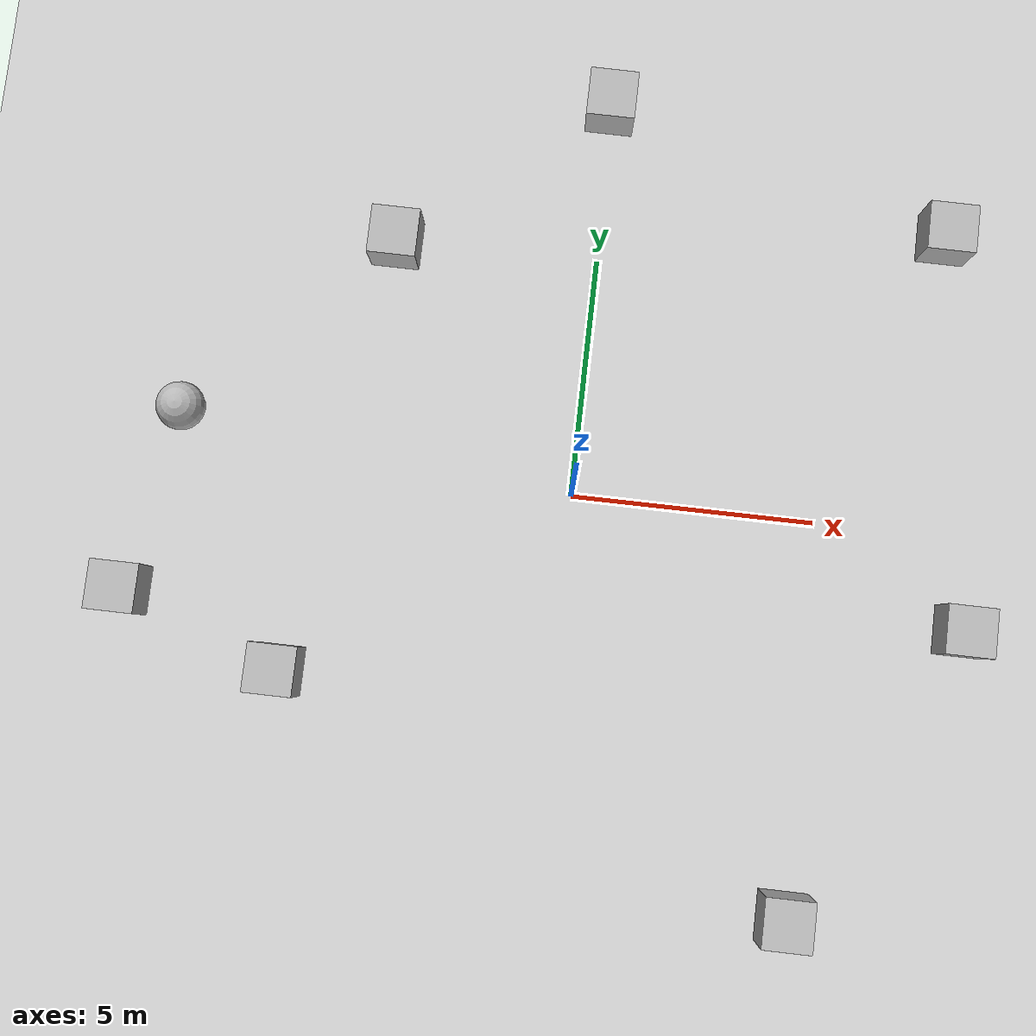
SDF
<sdf version='1.10'>
  <world name='playground'>
    <physics name='1ms' type='ignored'>
      <max_step_size>0.001</max_step_size>
      <real_time_factor>1</real_time_factor>
      <real_time_update_rate>1000</real_time_update_rate>
    </physics>
    <plugin name='gz::sim::systems::Physics' filename='gz-sim-physics-system'/>
    <plugin name='gz::sim::systems::UserCommands' filename='gz-sim-user-commands-system'/>
    <plugin name='gz::sim::systems::SceneBroadcaster' filename='gz-sim-scene-broadcaster-system'/>
    <plugin name='gz::sim::systems::Contact' filename='gz-sim-contact-system'/>
    <gravity>0 0 -9.8000000000000007</gravity>
    <magnetic_field>5.5644999999999998e-06 2.2875799999999999e-05 -4.2388400000000002e-05</magnetic_field>
    <atmosphere type='adiabatic'/>
    <scene>
      <ambient>0.400000006 0.400000006 0.400000006 1</ambient>
      <background>0.699999988 0.699999988 0.699999988 1</background>
      <shadows>true</shadows>
    </scene>
    <model name='ground_plane'>
      <static>true</static>
      <link name='link'>
        <collision name='collision'>
          <geometry>
            <plane>
              <normal>0 0 1</normal>
              <size>100 100</size>
            </plane>
          </geometry>
          <surface>
            <friction>
              <ode/>
            </friction>
            <bounce/>
            <contact/>
          </surface>
        </collision>
        <visual name='visual'>
          <geometry>
            <plane>
              <normal>0 0 1</normal>
              <size>100 100</size>
            </plane>
          </geometry>
          <material>
            <ambient>0.800000012 0.800000012 0.800000012 1</ambient>
            <diffuse>0.800000012 0.800000012 0.800000012 1</diffuse>
            <specular>0.800000012 0.800000012 0.800000012 1</specular>
          </material>
        </visual>
        <pose>0 0 0 0 0 0</pose>
        <inertial>
          <pose>0 0 0 0 0 0</pose>
          <mass>1</mass>
          <inertia>
            <ixx>1</ixx>
            <ixy>0</ixy>
            <ixz>0</ixz>
            <iyy>1</iyy>
            <iyz>0</iyz>
            <izz>1</izz>
          </inertia>
        </inertial>
        <enable_wind>false</enable_wind>
      </link>
      <pose>0 0 0 0 0 0</pose>
      <self_collide>false</self_collide>
    </model>

    <model name='box_0'>
      <pose>7.1442262375955892 6.2762400546593522 0.49999999990199806 6.2287739151293738e-22 9.3279666454713669e-22 -3.6315533669320137e-22</pose>
      <link name='box_link'>
        <inertial>
          <inertia>
            <ixx>0.16666</ixx>
            <ixy>0</ixy>
            <ixz>0</ixz>
            <iyy>0.16666</iyy>
            <iyz>0</iyz>
            <izz>0.16666</izz>
          </inertia>
          <mass>1</mass>
          <pose>0 0 0 0 0 0</pose>
        </inertial>
        <collision name='box_collision'>
          <geometry>
            <box>
              <size>1 1 1</size>
            </box>
          </geometry>
          <surface>
            <friction>
              <ode/>
            </friction>
            <bounce/>
            <contact/>
          </surface>
        </collision>
        <visual name='box_visual'>
          <geometry>
            <box>
              <size>1 1 1</size>
            </box>
          </geometry>
          <material>
            <ambient>0.300000012 0.300000012 0.300000012 1</ambient>
            <diffuse>0.699999988 0.699999988 0.699999988 1</diffuse>
            <specular>1 1 1 1</specular>
          </material>
        </visual>
        <pose>0 0 0 0 0 0</pose>
        <enable_wind>false</enable_wind>
      </link>
      <static>false</static>
      <self_collide>false</self_collide>
    </model>
    <model name='box_1'>
      <pose>5.0849779736287317 -7.9327928336368139 0.49999999990199806 6.2287739151293738e-22 9.3279666454713669e-22 -3.6315533669320137e-22</pose>
      <link name='box_link'>
        <inertial>
          <inertia>
            <ixx>0.16666</ixx>
            <ixy>0</ixy>
            <ixz>0</ixz>
            <iyy>0.16666</iyy>
            <iyz>0</iyz>
            <izz>0.16666</izz>
          </inertia>
          <mass>1</mass>
          <pose>0 0 0 0 0 0</pose>
        </inertial>
        <collision name='box_collision'>
          <geometry>
            <box>
              <size>1 1 1</size>
            </box>
          </geometry>
          <surface>
            <friction>
              <ode/>
            </friction>
            <bounce/>
            <contact/>
          </surface>
        </collision>
        <visual name='box_visual'>
          <geometry>
            <box>
              <size>1 1 1</size>
            </box>
          </geometry>
          <material>
            <ambient>0.300000012 0.300000012 0.300000012 1</ambient>
            <diffuse>0.699999988 0.699999988 0.699999988 1</diffuse>
            <specular>1 1 1 1</specular>
          </material>
        </visual>
        <pose>0 0 0 0 0 0</pose>
        <enable_wind>false</enable_wind>
      </link>
      <static>false</static>
      <self_collide>false</self_collide>
    </model>
    <model name='box_2'>
      <pose>-4.2224807767615609 4.9083536846219733 0.49999999990199806 6.2287739151293738e-22 9.3279666454713669e-22 -3.6315533669320137e-22</pose>
      <link name='box_link'>
        <inertial>
          <inertia>
            <ixx>0.16666</ixx>
            <ixy>0</ixy>
            <ixz>0</ixz>
            <iyy>0.16666</iyy>
            <iyz>0</iyz>
            <izz>0.16666</izz>
          </inertia>
          <mass>1</mass>
          <pose>0 0 0 0 0 0</pose>
        </inertial>
        <collision name='box_collision'>
          <geometry>
            <box>
              <size>1 1 1</size>
            </box>
          </geometry>
          <surface>
            <friction>
              <ode/>
            </friction>
            <bounce/>
            <contact/>
          </surface>
        </collision>
        <visual name='box_visual'>
          <geometry>
            <box>
              <size>1 1 1</size>
            </box>
          </geometry>
          <material>
            <ambient>0.300000012 0.300000012 0.300000012 1</ambient>
            <diffuse>0.699999988 0.699999988 0.699999988 1</diffuse>
            <specular>1 1 1 1</specular>
          </material>
        </visual>
        <pose>0 0 0 0 0 0</pose>
        <enable_wind>false</enable_wind>
      </link>
      <static>false</static>
      <self_collide>false</self_collide>
    </model>
    <model name='box_3'>
      <pose>-5.5391007527170872 -4.2001484382950007 0.49999999990199806 6.2287739151293738e-22 9.3279666454713669e-22 -3.6315533669320137e-22</pose>
      <link name='box_link'>
        <inertial>
          <inertia>
            <ixx>0.16666</ixx>
            <ixy>0</ixy>
            <ixz>0</ixz>
            <iyy>0.16666</iyy>
            <iyz>0</iyz>
            <izz>0.16666</izz>
          </inertia>
          <mass>1</mass>
          <pose>0 0 0 0 0 0</pose>
        </inertial>
        <collision name='box_collision'>
          <geometry>
            <box>
              <size>1 1 1</size>
            </box>
          </geometry>
          <surface>
            <friction>
              <ode/>
            </friction>
            <bounce/>
            <contact/>
          </surface>
        </collision>
        <visual name='box_visual'>
          <geometry>
            <box>
              <size>1 1 1</size>
            </box>
          </geometry>
          <material>
            <ambient>0.300000012 0.300000012 0.300000012 1</ambient>
            <diffuse>0.699999988 0.699999988 0.699999988 1</diffuse>
            <specular>1 1 1 1</specular>
          </material>
        </visual>
        <pose>0 0 0 0 0 0</pose>
        <enable_wind>false</enable_wind>
      </link>
      <static>false</static>
      <self_collide>false</self_collide>
    </model>
    <model name='sphere'>
      <pose>-8.1559663108103795 0.88921010026697545 0.499999999902001 0 0 0</pose>
      <link name='sphere_link'>
        <inertial>
          <inertia>
            <ixx>0.10000000000000001</ixx>
            <ixy>0</ixy>
            <ixz>0</ixz>
            <iyy>0.10000000000000001</iyy>
            <iyz>0</iyz>
            <izz>0.10000000000000001</izz>
          </inertia>
          <mass>1</mass>
          <pose>0 0 0 0 0 0</pose>
        </inertial>
        <collision name='sphere_collision'>
          <geometry>
            <sphere>
              <radius>0.5</radius>
            </sphere>
          </geometry>
          <surface>
            <friction>
              <ode/>
            </friction>
            <bounce/>
            <contact/>
          </surface>
        </collision>
        <visual name='sphere_visual'>
          <geometry>
            <sphere>
              <radius>0.5</radius>
            </sphere>
          </geometry>
          <material>
            <ambient>0.300000012 0.300000012 0.300000012 1</ambient>
            <diffuse>0.699999988 0.699999988 0.699999988 1</diffuse>
            <specular>1 1 1 1</specular>
          </material>
        </visual>
        <pose>0 0 0 0 0 0</pose>
        <enable_wind>false</enable_wind>
      </link>
      <static>false</static>
      <self_collide>false</self_collide>
    </model>
    <model name='box_4'>
      <pose>-0.082923882092945433 8.3190110156675541 0.49999999990199806 6.2287739151293738e-22 9.3279666454713669e-22 -3.6315533669320137e-22</pose>
      <link name='box_link'>
        <inertial>
          <inertia>
            <ixx>0.16666</ixx>
            <ixy>0</ixy>
            <ixz>0</ixz>
            <iyy>0.16666</iyy>
            <iyz>0</iyz>
            <izz>0.16666</izz>
          </inertia>
          <mass>1</mass>
          <pose>0 0 0 0 0 0</pose>
        </inertial>
        <collision name='box_collision'>
          <geometry>
            <box>
              <size>1 1 1</size>
            </box>
          </geometry>
          <surface>
            <friction>
              <ode/>
            </friction>
            <bounce/>
            <contact/>
          </surface>
        </collision>
        <visual name='box_visual'>
          <geometry>
            <box>
              <size>1 1 1</size>
            </box>
          </geometry>
          <material>
            <ambient>0.300000012 0.300000012 0.300000012 1</ambient>
            <diffuse>0.699999988 0.699999988 0.699999988 1</diffuse>
            <specular>1 1 1 1</specular>
          </material>
        </visual>
        <pose>0 0 0 0 0 0</pose>
        <enable_wind>false</enable_wind>
      </link>
      <static>false</static>
      <self_collide>false</self_collide>
    </model>
    <model name='box_5'>
      <pose>8.154530271801212 -1.8894813074695564 0.49999999990199806 6.2287739151293738e-22 9.3279666454713669e-22 -3.6315533669320137e-22</pose>
      <link name='box_link'>
        <inertial>
          <inertia>
            <ixx>0.16666</ixx>
            <ixy>0</ixy>
            <ixz>0</ixz>
            <iyy>0.16666</iyy>
            <iyz>0</iyz>
            <izz>0.16666</izz>
          </inertia>
          <mass>1</mass>
          <pose>0 0 0 0 0 0</pose>
        </inertial>
        <collision name='box_collision'>
          <geometry>
            <box>
              <size>1 1 1</size>
            </box>
          </geometry>
          <surface>
            <friction>
              <ode/>
            </friction>
            <bounce/>
            <contact/>
          </surface>
        </collision>
        <visual name='box_visual'>
          <geometry>
            <box>
              <size>1 1 1</size>
            </box>
          </geometry>
          <material>
            <ambient>0.300000012 0.300000012 0.300000012 1</ambient>
            <diffuse>0.699999988 0.699999988 0.699999988 1</diffuse>
            <specular>1 1 1 1</specular>
          </material>
        </visual>
        <pose>0 0 0 0 0 0</pose>
        <enable_wind>false</enable_wind>
      </link>
      <static>false</static>
      <self_collide>false</self_collide>
    </model>
    <model name='box_6'>
      <pose>-8.8780497082519627 -2.9255840727795999 0.49999999990199806 6.2287739151293738e-22 9.3279666454713669e-22 -3.6315533669320137e-22</pose>
      <link name='box_link'>
        <inertial>
          <inertia>
            <ixx>0.16666</ixx>
            <ixy>0</ixy>
            <ixz>0</ixz>
            <iyy>0.16666</iyy>
            <iyz>0</iyz>
            <izz>0.16666</izz>
          </inertia>
          <mass>1</mass>
          <pose>0 0 0 0 0 0</pose>
        </inertial>
        <collision name='box_collision'>
          <geometry>
            <box>
              <size>1 1 1</size>
            </box>
          </geometry>
          <surface>
            <friction>
              <ode/>
            </friction>
            <bounce/>
            <contact/>
          </surface>
        </collision>
        <visual name='box_visual'>
          <geometry>
            <box>
              <size>1 1 1</size>
            </box>
          </geometry>
          <material>
            <ambient>0.300000012 0.300000012 0.300000012 1</ambient>
            <diffuse>0.699999988 0.699999988 0.699999988 1</diffuse>
            <specular>1 1 1 1</specular>
          </material>
        </visual>
        <pose>0 0 0 0 0 0</pose>
        <enable_wind>false</enable_wind>
      </link>
      <static>false</static>
      <self_collide>false</self_collide>
    </model>
    <light name='sun' type='directional'>
      <pose>0 0 10 0 0 0</pose>
      <cast_shadows>true</cast_shadows>
      <intensity>1</intensity>
      <direction>-0.5 0.10000000000000001 -0.90000000000000002</direction>
      <diffuse>0.800000012 0.800000012 0.800000012 1</diffuse>
      <specular>0.200000003 0.200000003 0.200000003 1</specular>
      <attenuation>
        <range>1000</range>
        <linear>0.01</linear>
        <constant>0.90000000000000002</constant>
        <quadratic>0.001</quadratic>
      </attenuation>
      <spot>
        <inner_angle>0</inner_angle>
        <outer_angle>0</outer_angle>
        <falloff>0</falloff>
      </spot>
    </light>

  </world>
</sdf>
